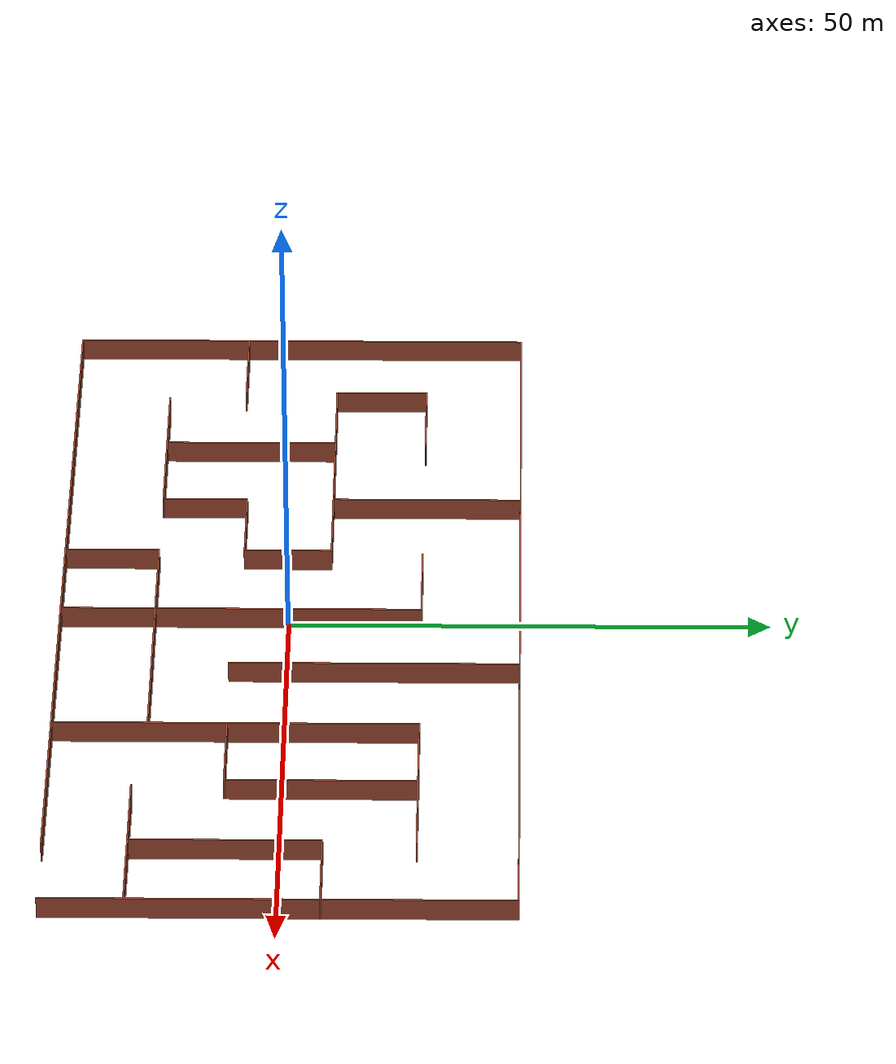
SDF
<?xml version='1.0'?>
<sdf version='1.5'>
  <model name='EasyMaze'>
    <pose frame=''>0.119234 0.192211 0 0 -0 0</pose>
    <link name='Wall_0'>
      <collision name='Wall_0_Collision'>
        <geometry>
          <box>
            <size>93.7757 0.15 2.5</size>
          </box>
        </geometry>
        <pose frame=''>0 0 1.25 0 -0 0</pose>
      </collision>
      <visual name='Wall_0_Visual'>
        <pose frame=''>0 0 1.25 0 -0 0</pose>
        <geometry>
          <box>
            <size>93.7757 0.15 2.5</size>
          </box>
        </geometry>
        <material>
          <script>
            <uri>file://media/materials/scripts/gazebo.material</uri>
            <name>Gazebo/Bricks</name>
          </script>
          <ambient>1 1 1 1</ambient>
        </material>
      </visual>
      <pose frame=''>0.036664 23.8 0 0 -0 0</pose>
    </link>
    <link name='Wall_1'>
      <collision name='Wall_1_Collision'>
        <geometry>
          <box>
            <size>47.75 0.15 2.5</size>
          </box>
        </geometry>
        <pose frame=''>0 0 1.25 0 -0 0</pose>
      </collision>
      <visual name='Wall_1_Visual'>
        <pose frame=''>0 0 1.25 0 -0 0</pose>
        <geometry>
          <box>
            <size>47.75 0.15 2.5</size>
          </box>
        </geometry>
        <material>
          <script>
            <uri>file://media/materials/scripts/gazebo.material</uri>
            <name>Gazebo/Bricks</name>
          </script>
          <ambient>1 1 1 1</ambient>
        </material>
      </visual>
      <pose frame=''>46.8495 0 0 0 0 -1.5708</pose>
    </link>
    <link name='Wall_10'>
      <collision name='Wall_10_Collision'>
        <geometry>
          <box>
            <size>9.25 0.15 2.5</size>
          </box>
        </geometry>
        <pose frame=''>0 0 1.25 0 -0 0</pose>
      </collision>
      <visual name='Wall_10_Visual'>
        <pose frame=''>0 0 1.25 0 -0 0</pose>
        <geometry>
          <box>
            <size>9.25 0.15 2.5</size>
          </box>
        </geometry>
        <material>
          <script>
            <uri>file://media/materials/scripts/gazebo.material</uri>
            <name>Gazebo/Bricks</name>
          </script>
          <ambient>1 1 1 1</ambient>
        </material>
      </visual>
      <pose frame=''>-9.55406 -0.512055 0 0 0 -1.5708</pose>
    </link>
    <link name='Wall_11'>
      <collision name='Wall_11_Collision'>
        <geometry>
          <box>
            <size>9 0.15 2.5</size>
          </box>
        </geometry>
        <pose frame=''>0 0 1.25 0 -0 0</pose>
      </collision>
      <visual name='Wall_11_Visual'>
        <pose frame=''>0 0 1.25 0 -0 0</pose>
        <geometry>
          <box>
            <size>9 0.15 2.5</size>
          </box>
        </geometry>
        <material>
          <script>
            <uri>file://media/materials/scripts/gazebo.material</uri>
            <name>Gazebo/Bricks</name>
          </script>
          <ambient>1 1 1 1</ambient>
        </material>
      </visual>
      <pose frame=''>-13.9791 -5.06206 0 0 -0 3.14159</pose>
    </link>
    <link name='Wall_12'>
      <collision name='Wall_12_Collision'>
        <geometry>
          <box>
            <size>9 0.15 2.5</size>
          </box>
        </geometry>
        <pose frame=''>0 0 1.25 0 -0 0</pose>
      </collision>
      <visual name='Wall_12_Visual'>
        <pose frame=''>0 0 1.25 0 -0 0</pose>
        <geometry>
          <box>
            <size>9 0.15 2.5</size>
          </box>
        </geometry>
        <material>
          <script>
            <uri>file://media/materials/scripts/gazebo.material</uri>
            <name>Gazebo/Bricks</name>
          </script>
          <ambient>1 1 1 1</ambient>
        </material>
      </visual>
      <pose frame=''>-18.4041 -9.48706 0 0 0 -1.5708</pose>
    </link>
    <link name='Wall_13'>
      <collision name='Wall_13_Collision'>
        <geometry>
          <box>
            <size>18 0.15 2.5</size>
          </box>
        </geometry>
        <pose frame=''>0 0 1.25 0 -0 0</pose>
      </collision>
      <visual name='Wall_13_Visual'>
        <pose frame=''>0 0 1.25 0 -0 0</pose>
        <geometry>
          <box>
            <size>18 0.15 2.5</size>
          </box>
        </geometry>
        <material>
          <script>
            <uri>file://media/materials/scripts/gazebo.material</uri>
            <name>Gazebo/Bricks</name>
          </script>
          <ambient>1 1 1 1</ambient>
        </material>
      </visual>
      <pose frame=''>-27.3291 -13.9121 0 0 -0 3.14159</pose>
    </link>
    <link name='Wall_15'>
      <collision name='Wall_15_Collision'>
        <geometry>
          <box>
            <size>18 0.15 2.5</size>
          </box>
        </geometry>
        <pose frame=''>0 0 1.25 0 -0 0</pose>
      </collision>
      <visual name='Wall_15_Visual'>
        <pose frame=''>0 0 1.25 0 -0 0</pose>
        <geometry>
          <box>
            <size>18 0.15 2.5</size>
          </box>
        </geometry>
        <material>
          <script>
            <uri>file://media/materials/scripts/gazebo.material</uri>
            <name>Gazebo/Bricks</name>
          </script>
          <ambient>1 1 1 1</ambient>
        </material>
      </visual>
      <pose frame=''>-28.3578 -4.8854 0 0 0 -1.5708</pose>
    </link>
    <link name='Wall_17'>
      <collision name='Wall_17_Collision'>
        <geometry>
          <box>
            <size>9.5 0.15 2.5</size>
          </box>
        </geometry>
        <pose frame=''>0 0 1.25 0 -0 0</pose>
      </collision>
      <visual name='Wall_17_Visual'>
        <pose frame=''>0 0 1.25 0 -0 0</pose>
        <geometry>
          <box>
            <size>9.5 0.15 2.5</size>
          </box>
        </geometry>
        <material>
          <script>
            <uri>file://media/materials/scripts/gazebo.material</uri>
            <name>Gazebo/Bricks</name>
          </script>
          <ambient>1 1 1 1</ambient>
        </material>
      </visual>
      <pose frame=''>-42.0796 -5.74334 0 0 -0 0</pose>
    </link>
    <link name='Wall_19'>
      <collision name='Wall_19_Collision'>
        <geometry>
          <box>
            <size>9.75 0.15 2.5</size>
          </box>
        </geometry>
        <pose frame=''>0 0 1.25 0 -0 0</pose>
      </collision>
      <visual name='Wall_19_Visual'>
        <pose frame=''>0 0 1.25 0 -0 0</pose>
        <geometry>
          <box>
            <size>9.75 0.15 2.5</size>
          </box>
        </geometry>
        <material>
          <script>
            <uri>file://media/materials/scripts/gazebo.material</uri>
            <name>Gazebo/Bricks</name>
          </script>
          <ambient>1 1 1 1</ambient>
        </material>
      </visual>
      <pose frame=''>-9.55144 -18.8483 0 0 0 -1.5708</pose>
    </link>
    <link name='Wall_22'>
      <collision name='Wall_22_Collision'>
        <geometry>
          <box>
            <size>37.5 0.15 2.5</size>
          </box>
        </geometry>
        <pose frame=''>0 0 1.25 0 -0 0</pose>
      </collision>
      <visual name='Wall_22_Visual'>
        <pose frame=''>0 0 1.25 0 -0 0</pose>
        <geometry>
          <box>
            <size>37.5 0.15 2.5</size>
          </box>
        </geometry>
        <material>
          <script>
            <uri>file://media/materials/scripts/gazebo.material</uri>
            <name>Gazebo/Bricks</name>
          </script>
          <ambient>1 1 1 1</ambient>
        </material>
      </visual>
      <pose frame=''>0.352554 -5.08927 0 0 0 -1.5708</pose>
    </link>
    <link name='Wall_24'>
      <collision name='Wall_24_Collision'>
        <geometry>
          <box>
            <size>30 0.15 2.5</size>
          </box>
        </geometry>
        <pose frame=''>0 0 1.25 0 -0 0</pose>
      </collision>
      <visual name='Wall_24_Visual'>
        <pose frame=''>0 0 1.25 0 -0 0</pose>
        <geometry>
          <box>
            <size>30 0.15 2.5</size>
          </box>
        </geometry>
        <material>
          <script>
            <uri>file://media/materials/scripts/gazebo.material</uri>
            <name>Gazebo/Bricks</name>
          </script>
          <ambient>1 1 1 1</ambient>
        </material>
      </visual>
      <pose frame=''>9.35586 8.86223 0 0 0 -1.5708</pose>
    </link>
    <link name='Wall_26'>
      <collision name='Wall_26_Collision'>
        <geometry>
          <box>
            <size>28.75 0.15 2.5</size>
          </box>
        </geometry>
        <pose frame=''>0 0 1.25 0 -0 0</pose>
      </collision>
      <visual name='Wall_26_Visual'>
        <pose frame=''>0 0 1.25 0 -0 0</pose>
        <geometry>
          <box>
            <size>28.75 0.15 2.5</size>
          </box>
        </geometry>
        <material>
          <script>
            <uri>file://media/materials/scripts/gazebo.material</uri>
            <name>Gazebo/Bricks</name>
          </script>
          <ambient>1 1 1 1</ambient>
        </material>
      </visual>
      <pose frame=''>4.76053 -13.997 0 0 -0 0</pose>
    </link>
    <link name='Wall_28'>
      <collision name='Wall_28_Collision'>
        <geometry>
          <box>
            <size>19 0.15 2.5</size>
          </box>
        </geometry>
        <pose frame=''>0 0 1.25 0 -0 0</pose>
      </collision>
      <visual name='Wall_28_Visual'>
        <pose frame=''>0 0 1.25 0 -0 0</pose>
        <geometry>
          <box>
            <size>19 0.15 2.5</size>
          </box>
        </geometry>
        <material>
          <script>
            <uri>file://media/materials/scripts/gazebo.material</uri>
            <name>Gazebo/Bricks</name>
          </script>
          <ambient>1 1 1 1</ambient>
        </material>
      </visual>
      <pose frame=''>28.6447 13.603 0 0 -0 0</pose>
    </link>
    <link name='Wall_30'>
      <collision name='Wall_30_Collision'>
        <geometry>
          <box>
            <size>19.75 0.15 2.5</size>
          </box>
        </geometry>
        <pose frame=''>0 0 1.25 0 -0 0</pose>
      </collision>
      <visual name='Wall_30_Visual'>
        <pose frame=''>0 0 1.25 0 -0 0</pose>
        <geometry>
          <box>
            <size>19.75 0.15 2.5</size>
          </box>
        </geometry>
        <material>
          <script>
            <uri>file://media/materials/scripts/gazebo.material</uri>
            <name>Gazebo/Bricks</name>
          </script>
          <ambient>1 1 1 1</ambient>
        </material>
      </visual>
      <pose frame=''>28.3187 3.86897 0 0 0 -1.5708</pose>
    </link>
    <link name='Wall_31'>
      <collision name='Wall_31_Collision'>
        <geometry>
          <box>
            <size>9.25 0.15 2.5</size>
          </box>
        </geometry>
        <pose frame=''>0 0 1.25 0 -0 0</pose>
      </collision>
      <visual name='Wall_31_Visual'>
        <pose frame=''>0 0 1.25 0 -0 0</pose>
        <geometry>
          <box>
            <size>9.25 0.15 2.5</size>
          </box>
        </geometry>
        <material>
          <script>
            <uri>file://media/materials/scripts/gazebo.material</uri>
            <name>Gazebo/Bricks</name>
          </script>
          <ambient>1 1 1 1</ambient>
        </material>
      </visual>
      <pose frame=''>23.7687 -5.93103 0 0 -0 3.14159</pose>
    </link>
    <link name='Wall_33'>
      <collision name='Wall_33_Collision'>
        <geometry>
          <box>
            <size>9.25 0.15 2.5</size>
          </box>
        </geometry>
        <pose frame=''>0 0 1.25 0 -0 0</pose>
      </collision>
      <visual name='Wall_33_Visual'>
        <pose frame=''>0 0 1.25 0 -0 0</pose>
        <geometry>
          <box>
            <size>9.25 0.15 2.5</size>
          </box>
        </geometry>
        <material>
          <script>
            <uri>file://media/materials/scripts/gazebo.material</uri>
            <name>Gazebo/Bricks</name>
          </script>
          <ambient>1 1 1 1</ambient>
        </material>
      </visual>
      <pose frame=''>42.3071 4.18752 0 0 -0 3.14159</pose>
    </link>
    <link name='Wall_34'>
      <collision name='Wall_34_Collision'>
        <geometry>
          <box>
            <size>19.5 0.15 2.5</size>
          </box>
        </geometry>
        <pose frame=''>0 0 1.25 0 -0 0</pose>
      </collision>
      <visual name='Wall_34_Visual'>
        <pose frame=''>0 0 1.25 0 -0 0</pose>
        <geometry>
          <box>
            <size>19.5 0.15 2.5</size>
          </box>
        </geometry>
        <material>
          <script>
            <uri>file://media/materials/scripts/gazebo.material</uri>
            <name>Gazebo/Bricks</name>
          </script>
          <ambient>1 1 1 1</ambient>
        </material>
      </visual>
      <pose frame=''>37.7571 -5.48748 0 0 0 -1.5708</pose>
    </link>
    <link name='Wall_37'>
      <collision name='Wall_37_Collision'>
        <geometry>
          <box>
            <size>17.75 0.15 2.5</size>
          </box>
        </geometry>
        <pose frame=''>0 0 1.25 0 -0 0</pose>
      </collision>
      <visual name='Wall_37_Visual'>
        <pose frame=''>0 0 1.25 0 -0 0</pose>
        <geometry>
          <box>
            <size>17.75 0.15 2.5</size>
          </box>
        </geometry>
        <material>
          <script>
            <uri>file://media/materials/scripts/gazebo.material</uri>
            <name>Gazebo/Bricks</name>
          </script>
          <ambient>1 1 1 1</ambient>
        </material>
      </visual>
      <pose frame=''>37.9678 -15.2323 0 0 -0 0</pose>
    </link>
    <link name='Wall_39'>
      <collision name='Wall_39_Collision'>
        <geometry>
          <box>
            <size>37.5 0.15 2.5</size>
          </box>
        </geometry>
        <pose frame=''>0 0 1.25 0 -0 0</pose>
      </collision>
      <visual name='Wall_39_Visual'>
        <pose frame=''>0 0 1.25 0 -0 0</pose>
        <geometry>
          <box>
            <size>37.5 0.15 2.5</size>
          </box>
        </geometry>
        <material>
          <script>
            <uri>file://media/materials/scripts/gazebo.material</uri>
            <name>Gazebo/Bricks</name>
          </script>
          <ambient>1 1 1 1</ambient>
        </material>
      </visual>
      <pose frame=''>19.2197 -5.07204 0 0 0 -1.5708</pose>
    </link>
    <link name='Wall_41'>
      <collision name='Wall_41_Collision'>
        <geometry>
          <box>
            <size>85.25 0.15 2.5</size>
          </box>
        </geometry>
        <pose frame=''>0 0 1.25 0 -0 0</pose>
      </collision>
      <visual name='Wall_41_Visual'>
        <pose frame=''>0 0 1.25 0 -0 0</pose>
        <geometry>
          <box>
            <size>85.25 0.15 2.5</size>
          </box>
        </geometry>
        <material>
          <script>
            <uri>file://media/materials/scripts/gazebo.material</uri>
            <name>Gazebo/Bricks</name>
          </script>
          <ambient>1 1 1 1</ambient>
        </material>
      </visual>
      <pose frame=''>-4.23942 -23.8 0 0 -0 0</pose>
    </link>
    <link name='Wall_43'>
      <collision name='Wall_43_Collision'>
        <geometry>
          <box>
            <size>47.75 0.15 2.5</size>
          </box>
        </geometry>
        <pose frame=''>0 0 1.25 0 -0 0</pose>
      </collision>
      <visual name='Wall_43_Visual'>
        <pose frame=''>0 0 1.25 0 -0 0</pose>
        <geometry>
          <box>
            <size>47.75 0.15 2.5</size>
          </box>
        </geometry>
        <material>
          <script>
            <uri>file://media/materials/scripts/gazebo.material</uri>
            <name>Gazebo/Bricks</name>
          </script>
          <ambient>1 1 1 1</ambient>
        </material>
      </visual>
      <pose frame=''>-46.8571 0 0 0 0 -1.5708</pose>
    </link>
    <link name='Wall_45'>
      <collision name='Wall_45_Collision'>
        <geometry>
          <box>
            <size>9.5 0.15 2.5</size>
          </box>
        </geometry>
        <pose frame=''>0 0 1.25 0 -0 0</pose>
      </collision>
      <visual name='Wall_45_Visual'>
        <pose frame=''>0 0 1.25 0 -0 0</pose>
        <geometry>
          <box>
            <size>9.5 0.15 2.5</size>
          </box>
        </geometry>
        <material>
          <script>
            <uri>file://media/materials/scripts/gazebo.material</uri>
            <name>Gazebo/Bricks</name>
          </script>
          <ambient>1 1 1 1</ambient>
        </material>
      </visual>
      <pose frame=''>-4.32245 13.5857 0 0 -0 0</pose>
    </link>
    <link name='Wall_5'>
      <collision name='Wall_5_Collision'>
        <geometry>
          <box>
            <size>19.75 0.15 2.5</size>
          </box>
        </geometry>
        <pose frame=''>0 0 1.25 0 -0 0</pose>
      </collision>
      <visual name='Wall_5_Visual'>
        <pose frame=''>0 0 1.25 0 -0 0</pose>
        <geometry>
          <box>
            <size>19.75 0.15 2.5</size>
          </box>
        </geometry>
        <material>
          <script>
            <uri>file://media/materials/scripts/gazebo.material</uri>
            <name>Gazebo/Bricks</name>
          </script>
          <ambient>1 1 1 1</ambient>
        </material>
      </visual>
      <pose frame=''>-18.4518 13.99 0 0 0 -1.5708</pose>
    </link>
    <link name='Wall_7'>
      <collision name='Wall_7_Collision'>
        <geometry>
          <box>
            <size>9.75 0.15 2.5</size>
          </box>
        </geometry>
        <pose frame=''>0 0 1.25 0 -0 0</pose>
      </collision>
      <visual name='Wall_7_Visual'>
        <pose frame=''>0 0 1.25 0 -0 0</pose>
        <geometry>
          <box>
            <size>9.75 0.15 2.5</size>
          </box>
        </geometry>
        <material>
          <script>
            <uri>file://media/materials/scripts/gazebo.material</uri>
            <name>Gazebo/Bricks</name>
          </script>
          <ambient>1 1 1 1</ambient>
        </material>
      </visual>
      <pose frame=''>-32.6041 13.6379 0 0 -0 3.14159</pose>
    </link>
    <link name='Wall_8'>
      <collision name='Wall_8_Collision'>
        <geometry>
          <box>
            <size>9.75 0.15 2.5</size>
          </box>
        </geometry>
        <pose frame=''>0 0 1.25 0 -0 0</pose>
      </collision>
      <visual name='Wall_8_Visual'>
        <pose frame=''>0 0 1.25 0 -0 0</pose>
        <geometry>
          <box>
            <size>9.75 0.15 2.5</size>
          </box>
        </geometry>
        <material>
          <script>
            <uri>file://media/materials/scripts/gazebo.material</uri>
            <name>Gazebo/Bricks</name>
          </script>
          <ambient>1 1 1 1</ambient>
        </material>
      </visual>
      <pose frame=''>-37.4041 8.83794 0 0 0 -1.5708</pose>
    </link>
    <link name='Wall_9'>
      <collision name='Wall_9_Collision'>
        <geometry>
          <box>
            <size>28 0.15 2.5</size>
          </box>
        </geometry>
        <pose frame=''>0 0 1.25 0 -0 0</pose>
      </collision>
      <visual name='Wall_9_Visual'>
        <pose frame=''>0 0 1.25 0 -0 0</pose>
        <geometry>
          <box>
            <size>28 0.15 2.5</size>
          </box>
        </geometry>
        <material>
          <script>
            <uri>file://media/materials/scripts/gazebo.material</uri>
            <name>Gazebo/Bricks</name>
          </script>
          <ambient>1 1 1 1</ambient>
        </material>
      </visual>
      <pose frame=''>-23.4791 4.03794 0 0 -0 0</pose>
    </link>
    <static>1</static>
  </model>
</sdf>
